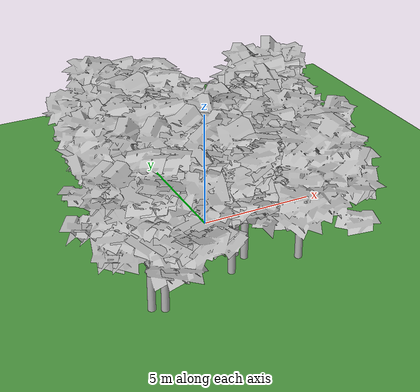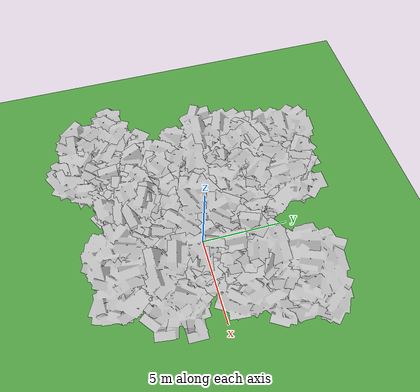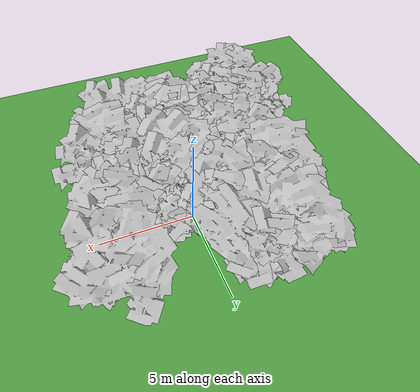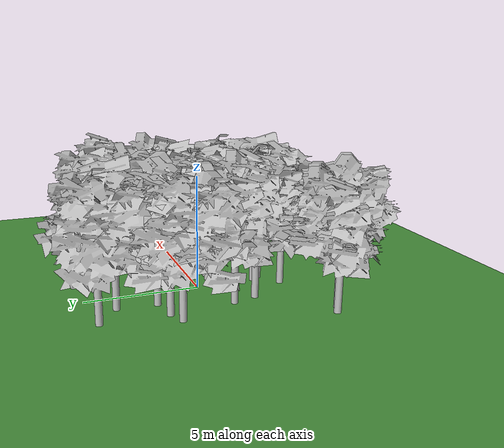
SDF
<?xml version="1.0" ?>
<?xml-model href="http://sdformat.org/schemas/root.xsd" schematypens="http://www.w3.org/2001/XMLSchema"?>
<sdf version="1.5">
  <world name="mrs_dense_forest_10">
    <plugin name="mrs_gazebo_static_transform_republisher_plugin" filename="libMrsGazeboCommonResources_StaticTransformRepublisher.so"/>

    <spherical_coordinates>
      <surface_model>EARTH_WGS84</surface_model>
      <latitude_deg>47.397743</latitude_deg>
      <longitude_deg>8.545594</longitude_deg>
      <elevation>0.0</elevation>
      <heading_deg>0</heading_deg>
    </spherical_coordinates>

    <physics name="default_physics" default="0" type="ode">
      <gravity>0 0 -9.8066</gravity>
      <ode>
        <solver>
          <type>quick</type>
          <iters>50</iters>
          <sor>1.0</sor>
          <use_dynamic_moi_rescaling>0</use_dynamic_moi_rescaling>
        </solver>
        <constraints>
          <cfm>0</cfm>
          <erp>0.2</erp>
          <contact_max_correcting_vel>1000</contact_max_correcting_vel>
          <contact_surface_layer>0.001</contact_surface_layer>
        </constraints>
      </ode>
      <max_step_size>0.004</max_step_size>
      <real_time_factor>1</real_time_factor>
      <real_time_update_rate>250</real_time_update_rate>
      <magnetic_field>6.0e-06 2.3e-05 -4.2e-05</magnetic_field>
    </physics>

    <scene>
      <shadows>false</shadows>
    </scene>

    <light type="directional" name="sun">
      <cast_shadows>true</cast_shadows>
      <pose>250 250 600 0 0 0</pose>
      <diffuse>0.8 0.8 0.8 1</diffuse>
      <specular>0.2 0.2 0.2 1</specular>
      <attenuation>
        <range>1000</range>
        <constant>0.9</constant>
        <linear>0.01</linear>
        <quadratic>0.001</quadratic>
      </attenuation>
      <direction>0 0 -1</direction>
    </light>

    <include>
      <uri>model://world_jean_tree</uri>
      <name>mrs_dense_forest_10_tree_001</name>
      <pose>1.986238 0.404763 0.000000 0 0 -1.401532</pose>
    </include>

    <include>
      <uri>model://world_jean_tree</uri>
      <name>mrs_dense_forest_10_tree_003</name>
      <pose>-2.321035 4.749358 0.000000 0 0 -2.405628</pose>
    </include>

    <include>
      <uri>model://world_jean_tree</uri>
      <name>mrs_dense_forest_10_tree_004</name>
      <pose>0.754366 -0.724326 0.000000 0 0 -1.852761</pose>
    </include>

    <include>
      <uri>model://world_jean_tree</uri>
      <name>mrs_dense_forest_10_tree_005</name>
      <pose>0.257643 -2.963321 0.000000 0 0 -2.835246</pose>
    </include>

    <include>
      <uri>model://world_jean_tree</uri>
      <name>mrs_dense_forest_10_tree_006</name>
      <pose>-3.915372 -4.709622 0.000000 0 0 -0.055596</pose>
    </include>

    <include>
      <uri>model://world_jean_tree</uri>
      <name>mrs_dense_forest_10_tree_007</name>
      <pose>-4.350989 -4.475341 0.000000 0 0 -0.055596</pose>
    </include>

    <include>
      <uri>model://world_jean_tree</uri>
      <name>mrs_dense_forest_10_tree_008</name>
      <pose>0.027284 -2.633390 0.000000 0 0 -2.444524</pose>
    </include>

    <include>
      <uri>model://world_jean_tree</uri>
      <name>mrs_dense_forest_10_tree_009</name>
      <pose>-2.091227 -0.923786 0.000000 0 0 0.384187</pose>
    </include>

    <include>
      <uri>model://world_jean_tree</uri>
      <name>mrs_dense_forest_10_tree_010</name>
      <pose>-2.378709 1.914971 0.000000 0 0 0.963397</pose>
    </include>

    <include>
      <uri>model://world_jean_tree</uri>
      <name>mrs_dense_forest_10_tree_011</name>
      <pose>-1.143144 3.841885 0.000000 0 0 -0.903485</pose>
    </include>

    <include>
      <uri>model://world_jean_tree</uri>
      <name>mrs_dense_forest_10_tree_012</name>
      <pose>-3.062804 1.605219 0.000000 0 0 -2.689910</pose>
    </include>

    <include>
      <uri>model://world_jean_tree</uri>
      <name>mrs_dense_forest_10_tree_013</name>
      <pose>4.685165 3.038776 0.000000 0 0 1.851518</pose>
    </include>

    <include>
      <uri>model://world_jean_tree</uri>
      <name>mrs_dense_forest_10_tree_014</name>
      <pose>-1.238277 2.144758 0.000000 0 0 -0.140443</pose>
    </include>

    <include>
      <uri>model://world_jean_tree</uri>
      <name>mrs_dense_forest_10_tree_015</name>
      <pose>3.556717 1.347686 0.000000 0 0 0.462843</pose>
    </include>

    <include>
      <uri>model://world_jean_tree</uri>
      <name>mrs_dense_forest_10_tree_016</name>
      <pose>3.246999 -2.149990 0.000000 0 0 -2.599724</pose>
    </include>

    <include>
      <uri>model://world_jean_tree</uri>
      <name>mrs_dense_forest_10_tree_017</name>
      <pose>2.192528 -3.880258 0.000000 0 0 -0.963640</pose>
    </include>

    <include>
      <uri>model://world_jean_tree</uri>
      <name>mrs_dense_forest_10_tree_018</name>
      <pose>3.050985 0.223972 0.000000 0 0 2.207372</pose>
    </include>

    <include>
      <uri>model://world_jean_tree</uri>
      <name>mrs_dense_forest_10_tree_019</name>
      <pose>-0.665921 -3.660063 0.000000 0 0 0.942517</pose>
    </include>

    <include>
      <uri>model://world_jean_tree</uri>
      <name>mrs_dense_forest_10_tree_020</name>
      <pose>-1.806085 -1.958286 0.000000 0 0 1.279711</pose>
    </include>

    <model name="ground_plane">
      <static>true</static>
      <link name="link">
        <collision name="collision">
          <pose>0 0 0 0 0 0</pose>
          <geometry>
            <plane>
              <normal>0 0 1</normal>
              <size>250 250</size>
            </plane>
          </geometry>
          <surface>
            <friction>
              <ode>
                <mu>1</mu>
                <mu2>1</mu2>
              </ode>
            </friction>
          </surface>
        </collision>
        <visual name="grass">
          <pose>0 0 0 0 0 0</pose>
          <cast_shadows>false</cast_shadows>
          <geometry>
            <plane>
              <normal>0 0 1</normal>
              <size>150 250</size>
            </plane>
          </geometry>
          <material>
            <script>
              <uri>file://media/materials/scripts/Gazebo.material</uri>
              <name>Gazebo/Grass</name>
            </script>
          </material>
        </visual>
      </link>
    </model>

    <gui>
      <camera name="camera">
        <pose>0 -18 12 0 0.55 1.57</pose>
      </camera>
    </gui>

    <plugin name="mrs_gazebo_rviz_cam_synchronizer" filename="libMrsGazeboCommonResources_RvizCameraSynchronizer.so">
      <target_frame_id>gazebo_user_camera</target_frame_id>
      <world_origin_frame_id>uav1/gps_origin</world_origin_frame_id>
      <frame_to_follow>uav1::base_link</frame_to_follow>
    </plugin>
  </world>
</sdf>

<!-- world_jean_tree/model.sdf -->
<sdf version="1.6">
  <model name="world_jean_tree">
    <static>true</static>
    <link name="link">
      <collision name="collision">
        <pose>0 0 1.0 0 0 0</pose>
        <geometry>
          <cylinder>
            <radius>0.22</radius>
            <length>2.0</length>
          </cylinder>
        </geometry>
      </collision>
      <visual name="visual">
        <geometry>
          <mesh>
            <uri>model://world_jean_tree/meshes/world_jean_tree.obj</uri>
            <scale>1 1 1</scale>
          </mesh>
        </geometry>
      </visual>
    </link>
  </model>
</sdf>
